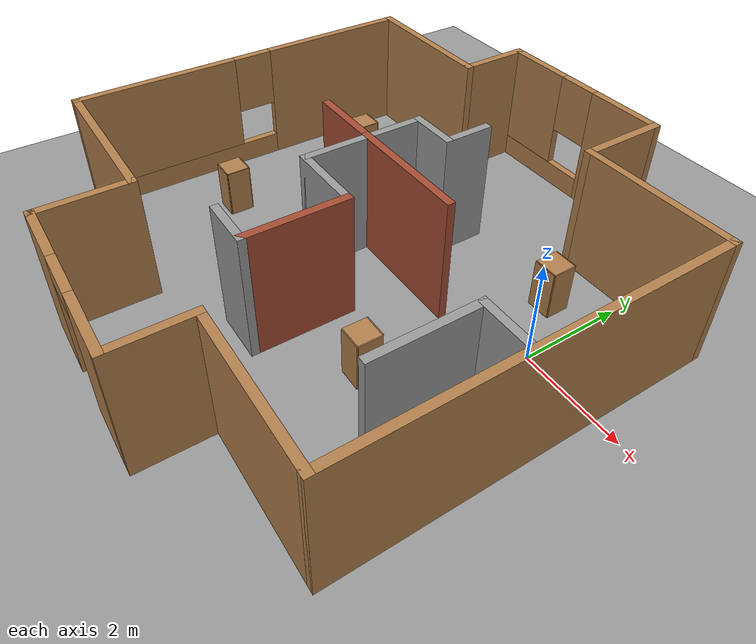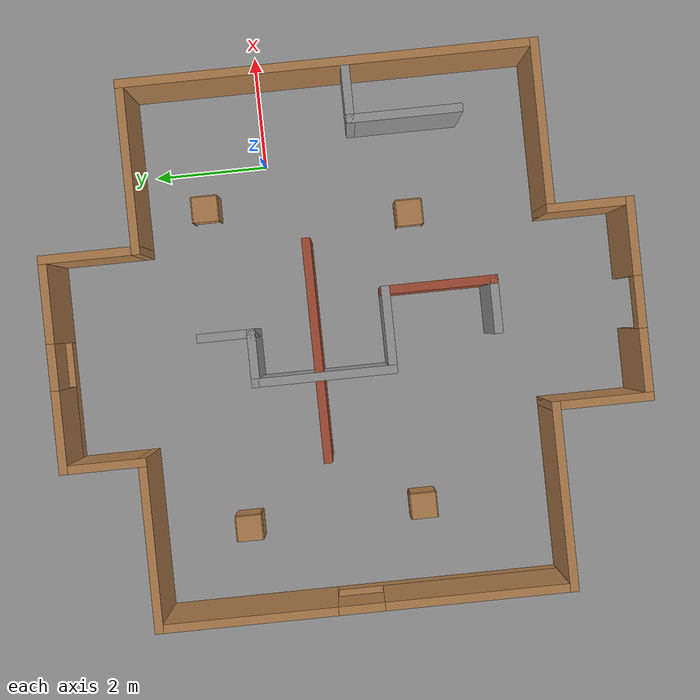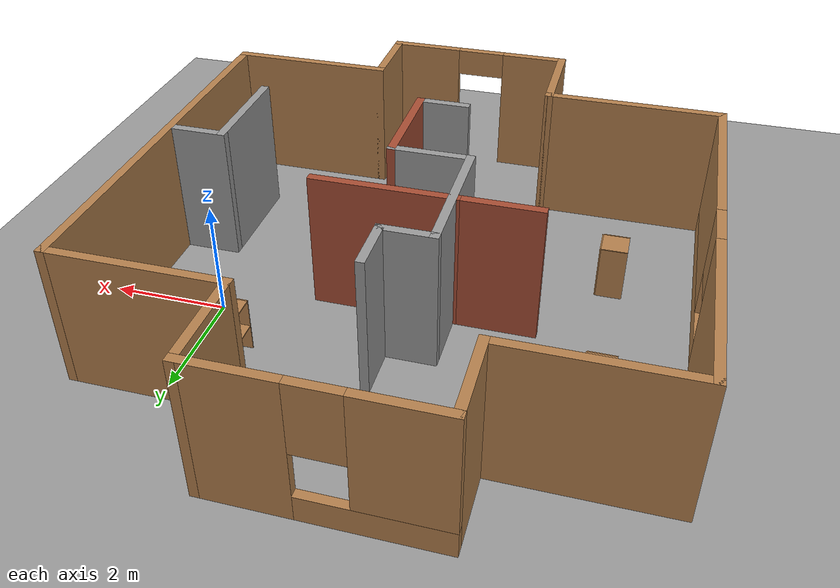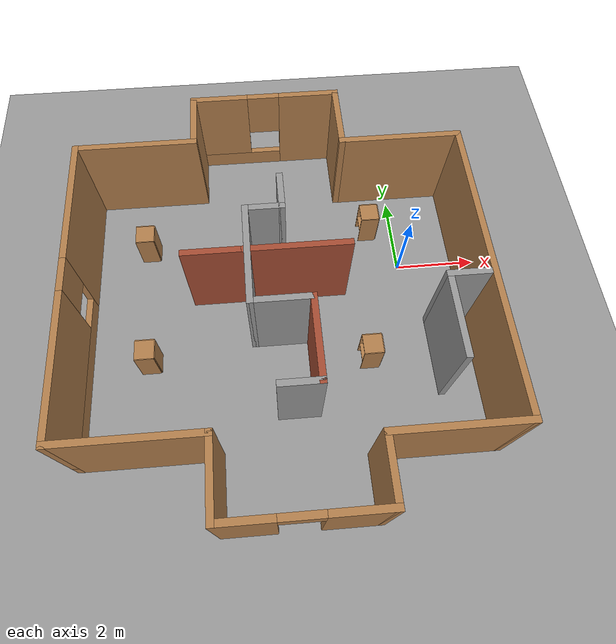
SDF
<sdf version="1.7">
 <world name="default">
  <light name="sun" type="directional">
   <pose>0 0 10 0 -0 0</pose>
   <diffuse>0.8 0.8 0.8 1</diffuse>
   <specular>0.2 0.2 0.2 1</specular>
   <attenuation>
    <range>1000</range>
    <constant>0.9</constant>
    <linear>0.01</linear>
    <sdf version="1.6">
     <world name="simple_maze">
      <model name="ground_plane">
       <static>true</static>
       <link name="link">
        <collision name="collision">
         <geometry><plane><normal>0 0 1</normal><size>100 100</size></plane></geometry>
        </collision>
        <visual name="visual">
         <geometry><plane><normal>0 0 1</normal><size>100 100</size></plane></geometry>
         <material><ambient>0.5 0.5 0.5 1</ambient><diffuse>0.5 0.5 0.5 1</diffuse></material>
        </visual>
       </link>
      </model>
      <light type="point" name="sun">
       <pose>0 0 10 0 0 0</pose>
       <diffuse>0.8 0.8 0.8 1</diffuse>
       <specular>0.2 0.2 0.2 1</specular>
       <attenuation><range>20</range><linear>0.1</linear></attenuation>
      </light>
      <gui fullscreen="0">
       <camera name="user_camera">
        <pose>0 0 15 0 1.57 0</pose>
        <view_controller>orbit</view_controller>
        <projection_type>perspective</projection_type>
       </camera>
      </gui>
      <physics type="ode">
       <real_time_update_rate>1000.0</real_time_update_rate>
       <max_step_size>0.001</max_step_size>
       <real_time_factor>1</real_time_factor>
       <ode>
        <solver>
         <type>quick</type>
         <iters>150</iters>
         <precon_iters>0</precon_iters>
         <sor>1.400000</sor>
         <use_dynamic_moi_rescaling>1</use_dynamic_moi_rescaling>
        </solver>
        <constraints>
         <cfm>0.00001</cfm>
         <erp>0.2</erp>
         <contact_max_correcting_vel>2000.000000</contact_max_correcting_vel>
         <contact_surface_layer>0.01000</contact_surface_layer>
        </constraints>
       </ode>
      </physics>
      <model name="outer_walls">
       <static>1</static>
       <link name="link">
        <collision name="left_wall1_collision">
         <pose>-5.0 2.0 0.5 0 0 0</pose>
         <geometry><box><size>0.2 6.0 1.0</size></box></geometry>
        </collision>
        <visual name="left_wall1_visual">
         <pose>-5.0 2.0 0.5 0 0 0</pose>
         <geometry><box><size>0.2 6.0 1.0</size></box></geometry>
         <material>
          <script><uri>file://media/materials/scripts/gazebo.material</uri><name>Gazebo/Wood</name></script>
         </material>
        </visual>
        <collision name="left_wall2_collision">
         <pose>-5.0 -3.0 0.5 0 0 0</pose>
         <geometry><box><size>0.2 4.0 1.0</size></box></geometry>
        </collision>
        <visual name="left_wall2_visual">
         <pose>-5.0 -3.0 0.5 0 0 0</pose>
         <geometry><box><size>0.2 4.0 1.0</size></box></geometry>
         <material>
          <script><uri>file://media/materials/scripts/gazebo.material</uri><name>Gazebo/Wood</name></script>
         </material>
        </visual>
        <collision name="right_wall_collision">
         <pose>5.0 0 0.5 0 0 0</pose>
         <geometry><box><size>0.2 10.0 1.0</size></box></geometry>
        </collision>
        <visual name="right_wall_visual">
         <pose>5.0 0 0.5 0 0 0</pose>
         <geometry><box><size>0.2 10.0 1.0</size></box></geometry>
         <material>
          <script><uri>file://media/materials/scripts/gazebo.material</uri><name>Gazebo/Wood</name></script>
         </material>
        </visual>
        <collision name="top_wall1_collision">
         <pose>-2.0 5.0 0.5 0 0 0</pose>
         <geometry><box><size>6.0 0.2 1.0</size></box></geometry>
        </collision>
        <visual name="top_wall1_visual">
         <pose>-2.0 5.0 0.5 0 0 0</pose>
         <geometry><box><size>6.0 0.2 1.0</size></box></geometry>
         <material>
          <script><uri>file://media/materials/scripts/gazebo.material</uri><name>Gazebo/Wood</name></script>
         </material>
        </visual>
        <collision name="top_wall2_collision">
         <pose>3.0 5.0 0.5 0 0 0</pose>
         <geometry><box><size>4.0 0.2 1.0</size></box></geometry>
        </collision>
        <visual name="top_wall2_visual">
         <pose>3.0 5.0 0.5 0 0 0</pose>
         <geometry><box><size>4.0 0.2 1.0</size></box></geometry>
         <material>
          <script><uri>file://media/materials/scripts/gazebo.material</uri><name>Gazebo/Wood</name></script>
         </material>
        </visual>
        <collision name="bottom_wall1_collision">
         <pose>-2.0 -5.0 0.5 0 0 0</pose>
         <geometry><box><size>6.0 0.2 1.0</size></box></geometry>
        </collision>
        <visual name="bottom_wall1_visual">
         <pose>-2.0 -5.0 0.5 0 0 0</pose>
         <geometry><box><size>6.0 0.2 1.0</size></box></geometry>
         <material>
          <script><uri>file://media/materials/scripts/gazebo.material</uri><name>Gazebo/Wood</name></script>
         </material>
        </visual>
        <collision name="bottom_wall2_collision">
         <pose>3.0 -5.0 0.5 0 0 0</pose>
         <geometry><box><size>4.0 0.2 1.0</size></box></geometry>
        </collision>
        <visual name="bottom_wall2_visual">
         <pose>3.0 -5.0 0.5 0 0 0</pose>
         <geometry><box><size>4.0 0.2 1.0</size></box></geometry>
         <material>
          <script><uri>file://media/materials/scripts/gazebo.material</uri><name>Gazebo/Wood</name></script>
         </material>
        </visual>
       </link>
      </model>
      <model name="brick_walls">
       <static>1</static>
       <link name="link">
        <collision name="brick_wall1_collision">
         <pose>0 2.0 0.5 0 0 0</pose>
         <geometry><box><size>4.0 0.2 1.0</size></box></geometry>
        </collision>
        <visual name="brick_wall1_visual">
         <pose>0 2.0 0.5 0 0 0</pose>
         <geometry><box><size>4.0 0.2 1.0</size></box></geometry>
         <material>
          <script><uri>file://media/materials/scripts/gazebo.material</uri><name>Gazebo/Bricks</name></script>
         </material>
        </visual>
        <collision name="brick_wall2_collision">
         <pose>0 -2.0 0.5 0 0 0</pose>
         <geometry><box><size>4.0 0.2 1.0</size></box></geometry>
        </collision>
        <visual name="brick_wall2_visual">
         <pose>0 -2.0 0.5 0 0 0</pose>
         <geometry><box><size>4.0 0.2 1.0</size></box></geometry>
         <material>
          <script><uri>file://media/materials/scripts/gazebo.material</uri><name>Gazebo/Bricks</name></script>
         </material>
        </visual>
       </link>
      </model>
      <model name="black_walls">
       <static>1</static>
       <link name="link">
        <collision name="black_wall1_collision">
         <pose>2.0 0 0.5 0 0 1.5708</pose>
         <geometry><box><size>4.0 0.2 1.0</size></box></geometry>
        </collision>
        <visual name="black_wall1_visual">
         <pose>2.0 0 0.5 0 0 1.5708</pose>
         <geometry><box><size>4.0 0.2 1.0</size></box></geometry>
         <material><ambient>0 0 0 1</ambient><diffuse>0 0 0 1</diffuse></material>
        </visual>
        <collision name="black_wall2_collision">
         <pose>4.0 2.0 0.5 0 0 1.5708</pose>
         <geometry><box><size>2.0 0.2 1.0</size></box></geometry>
        </collision>
        <visual name="black_wall2_visual">
         <pose>4.0 2.0 0.5 0 0 1.5708</pose>
         <geometry><box><size>2.0 0.2 1.0</size></box></geometry>
         <material><ambient>0 0 0 1</ambient><diffuse>0 0 0 1</diffuse></material>
        </visual>
        <collision name="black_wall3_collision">
         <pose>0 -4.0 0.5 0 0 0</pose>
         <geometry><box><size>4.0 0.2 1.0</size></box></geometry>
        </collision>
        <visual name="black_wall3_visual">
         <pose>0 -4.0 0.5 0 0 0</pose>
         <geometry><box><size>4.0 0.2 1.0</size></box></geometry>
         <material><ambient>0 0 0 1</ambient><diffuse>0 0 0 1</diffuse></material>
        </visual>
       </link>
      </model>
      <model name="wooden_box1">
       <pose>-3.0 3.0 0.25 0 0 0</pose>
       <link name="link">
        <collision name="collision"><geometry><box><size>0.5 0.5 0.5</size></box></geometry></collision>
        <visual name="visual">
         <geometry><box><size>0.5 0.5 0.5</size></box></geometry>
         <material>
          <script><uri>file://media/materials/scripts/gazebo.material</uri><name>Gazebo/Wood</name></script>
         </material>
        </visual>
       </link>
      </model>
      <model name="wooden_box2">
       <pose>-3.0 -1.0 0.25 0 0 0</pose>
       <link name="link">
        <collision name="collision"><geometry><box><size>0.5 0.5 0.5</size></box></geometry></collision>
        <visual name="visual">
         <geometry><box><size>0.5 0.5 0.5</size></box></geometry>
         <material>
          <script><uri>file://media/materials/scripts/gazebo.material</uri><name>Gazebo/Wood</name></script>
         </material>
        </visual>
       </link>
      </model>
      <model name="wooden_box3">
       <pose>-2.0 -3.5 0.25 0 0 0</pose>
       <link name="link">
        <collision name="collision"><geometry><box><size>0.5 0.5 0.5</size></box></geometry></collision>
        <visual name="visual">
         <geometry><box><size>0.5 0.5 0.5</size></box></geometry>
         <material>
          <script><uri>file://media/materials/scripts/gazebo.material</uri><name>Gazebo/Wood</name></script>
         </material>
        </visual>
       </link>
      </model>
      <model name="wooden_box4">
       <pose>3.0 -2.0 0.25 0 0 0</pose>
       <link name="link">
        <collision name="collision"><geometry><box><size>0.5 0.5 0.5</size></box></geometry></collision>
        <visual name="visual">
         <geometry><box><size>0.5 0.5 0.5</size></box></geometry>
         <material>
          <script><uri>file://media/materials/scripts/gazebo.material</uri><name>Gazebo/Wood</name></script>
         </material>
        </visual>
       </link>
      </model>
      <model name="wooden_box5">
       <pose>3.0 3.0 0.25 0 0 0</pose>
       <link name="link">
        <collision name="collision"><geometry><box><size>0.5 0.5 0.5</size></box></geometry></collision>
        <visual name="visual">
         <geometry><box><size>0.5 0.5 0.5</size></box></geometry>
         <material>
          <script><uri>file://media/materials/scripts/gazebo.material</uri><name>Gazebo/Wood</name></script>
         </material>
        </visual>
       </link>
      </model>
      <model name="water_region">
       <pose>4.5 3.5 0.01 0 0 0</pose>
       <static>true</static>
       <link name="link">
        <collision name="collision"><geometry><box><size>1.0 3.0 0.02</size></box></geometry></collision>
        <visual name="visual">
         <geometry><box><size>1.0 3.0 0.02</size></box></geometry>
         <material><ambient>0 0 1 1</ambient><diffuse>0 0 1 1</diffuse></material>
        </visual>
       </link>
      </model>
     </world>
    </sdf>
    <quadratic>0.001</quadratic>
   </attenuation>
   <direction>-0.5 0.1 -0.9</direction>
   <spot><inner_angle>0</inner_angle><outer_angle>0</outer_angle><falloff>0</falloff></spot>
  </light>
  <model name="ground_plane">
   <static>1</static>
   <link name="link">
    <collision name="collision">
     <geometry><plane><normal>0 0 1</normal><size>100 100</size></plane></geometry>
     <surface>
      <contact><collide_bitmask>65535</collide_bitmask></contact>
      <friction><ode><mu>100</mu><mu2>50</mu2></ode></friction>
     </surface>
    </collision>
    <visual name="visual">
     <cast_shadows>0</cast_shadows>
     <geometry><plane><normal>0 0 1</normal><size>100 100</size></plane></geometry>
     <material>
      <script><uri>file://media/materials/scripts/gazebo.material</uri><name>Gazebo/Grey</name></script>
     </material>
    </visual>
   </link>
  </model>
  <gravity>0 0 -9.8</gravity>
  <magnetic_field>6e-06 2.3e-05 -4.2e-05</magnetic_field>
  <atmosphere type="adiabatic"/>
  <physics type="ode">
   <max_step_size>0.001</max_step_size>
   <real_time_factor>1</real_time_factor>
   <real_time_update_rate>1000</real_time_update_rate>
  </physics>
  <scene><ambient>0.4 0.4 0.4 1</ambient><background>0.7 0.7 0.7 1</background><shadows>1</shadows></scene>
  <spherical_coordinates>
   <surface_model>EARTH_WGS84</surface_model>
   <latitude_deg>0</latitude_deg>
   <longitude_deg>0</longitude_deg>
   <elevation>0</elevation>
   <heading_deg>0</heading_deg>
  </spherical_coordinates>
  <model name="test2.word">
   <pose>-3.19164 -1.16233 0 0 -0 0</pose>
   <link name="Wall_16">
    <collision name="Wall_16_Collision">
     <geometry><box><size>3.25 0.15 2.5</size></box></geometry>
     <pose>0 0 1.25 0 -0 0</pose>
    </collision>
    <visual name="Wall_16_Visual">
     <pose>0 0 1.25 0 -0 0</pose>
     <geometry><box><size>3.25 0.15 2.5</size></box></geometry>
     <material>
      <script><uri>file://media/materials/scripts/gazebo.material</uri><name>Gazebo/Wood</name></script>
      <ambient>1 1 1 1</ambient>
     </material>
     <meta><layer>0</layer></meta>
    </visual>
    <pose>-3.1 -3.425 0 0 -0 0</pose>
   </link>
   <link name="Wall_17">
    <collision name="Wall_17_Collision">
     <geometry><box><size>1.75 0.15 2.5</size></box></geometry>
     <pose>0 0 1.25 0 -0 0</pose>
    </collision>
    <visual name="Wall_17_Visual">
     <pose>0 0 1.25 0 -0 0</pose>
     <geometry><box><size>1.75 0.15 2.5</size></box></geometry>
     <material>
      <script><uri>file://media/materials/scripts/gazebo.material</uri><name>Gazebo/Wood</name></script>
      <ambient>1 1 1 1</ambient>
     </material>
     <meta><layer>0</layer></meta>
    </visual>
    <pose>-1.55 -4.225 0 0 -0 -1.5708</pose>
   </link>
   <link name="Wall_18">
    <pose>0.125 -5.025 0 0 -0 0</pose>
    <visual name="Wall_18_Visual_0">
     <pose>-1.12889 0 1.25 0 -0 0</pose>
     <geometry><box><size>1.24222 0.15 2.5</size></box></geometry>
     <material>
      <script><uri>file://media/materials/scripts/gazebo.material</uri><name>Gazebo/Wood</name></script>
      <ambient>1 1 1 1</ambient>
     </material>
     <meta><layer>0</layer></meta>
    </visual>
    <collision name="Wall_18_Collision_0">
     <geometry><box><size>1.24222 0.15 2.5</size></box></geometry>
     <pose>-1.12889 0 1.25 0 -0 0</pose>
    </collision>
    <visual name="Wall_18_Visual_1">
     <pose>1.07111 0 1.25 0 -0 0</pose>
     <geometry><box><size>1.35777 0.15 2.5</size></box></geometry>
     <material>
      <script><uri>file://media/materials/scripts/gazebo.material</uri><name>Gazebo/Wood</name></script>
      <ambient>1 1 1 1</ambient>
     </material>
     <meta><layer>0</layer></meta>
    </visual>
    <collision name="Wall_18_Collision_1">
     <geometry><box><size>1.35777 0.15 2.5</size></box></geometry>
     <pose>1.07111 0 1.25 0 -0 0</pose>
    </collision>
    <visual name="Wall_18_Visual_2">
     <pose>-0.057775 0 2.25 0 -0 0</pose>
     <geometry><box><size>0.9 0.15 0.5</size></box></geometry>
     <material>
      <script><uri>file://media/materials/scripts/gazebo.material</uri><name>Gazebo/Wood</name></script>
      <ambient>1 1 1 1</ambient>
     </material>
     <meta><layer>0</layer></meta>
    </visual>
    <collision name="Wall_18_Collision_2">
     <geometry><box><size>0.9 0.15 0.5</size></box></geometry>
     <pose>-0.057775 0 2.25 0 -0 0</pose>
    </collision>
   </link>
   <link name="Wall_19">
    <collision name="Wall_19_Collision">
     <geometry><box><size>1.5 0.15 2.5</size></box></geometry>
     <pose>0 0 1.25 0 -0 0</pose>
    </collision>
    <visual name="Wall_19_Visual">
     <pose>0 0 1.25 0 -0 0</pose>
     <geometry><box><size>1.5 0.15 2.5</size></box></geometry>
     <material>
      <script><uri>file://media/materials/scripts/gazebo.material</uri><name>Gazebo/Wood</name></script>
      <ambient>1 1 1 1</ambient>
     </material>
     <meta><layer>0</layer></meta>
    </visual>
    <pose>1.8 -4.35 0 0 -0 1.5708</pose>
   </link>
   <link name="Wall_20">
    <collision name="Wall_20_Collision">
     <geometry><box><size>3 0.15 2.5</size></box></geometry>
     <pose>0 0 1.25 0 -0 0</pose>
    </collision>
    <visual name="Wall_20_Visual">
     <pose>0 0 1.25 0 -0 0</pose>
     <geometry><box><size>3 0.15 2.5</size></box></geometry>
     <material>
      <script><uri>file://media/materials/scripts/gazebo.material</uri><name>Gazebo/Wood</name></script>
      <ambient>1 1 1 1</ambient>
     </material>
     <meta><layer>0</layer></meta>
    </visual>
    <pose>3.225 -3.675 0 0 -0 0</pose>
   </link>
   <link name="Wall_21">
    <collision name="Wall_21_Collision">
     <geometry><box><size>7.25 0.15 2.5</size></box></geometry>
     <pose>0 0 1.25 0 -0 0</pose>
    </collision>
    <visual name="Wall_21_Visual">
     <pose>0 0 1.25 0 -0 0</pose>
     <geometry><box><size>7.25 0.15 2.5</size></box></geometry>
     <material>
      <script><uri>file://media/materials/scripts/gazebo.material</uri><name>Gazebo/Wood</name></script>
      <ambient>1 1 1 1</ambient>
     </material>
     <meta><layer>0</layer></meta>
    </visual>
    <pose>4.65 -0.125 0 0 -0 1.5708</pose>
   </link>
   <link name="Wall_22">
    <collision name="Wall_22_Collision">
     <geometry><box><size>3 0.15 2.5</size></box></geometry>
     <pose>0 0 1.25 0 -0 0</pose>
    </collision>
    <visual name="Wall_22_Visual">
     <pose>0 0 1.25 0 -0 0</pose>
     <geometry><box><size>3 0.15 2.5</size></box></geometry>
     <material>
      <script><uri>file://media/materials/scripts/gazebo.material</uri><name>Gazebo/Wood</name></script>
      <ambient>1 1 1 1</ambient>
     </material>
     <meta><layer>0</layer></meta>
    </visual>
    <pose>3.225 3.425 0 0 -0 3.14159</pose>
   </link>
   <link name="Wall_23">
    <collision name="Wall_23_Collision">
     <geometry><box><size>1.75 0.15 2.5</size></box></geometry>
     <pose>0 0 1.25 0 -0 0</pose>
    </collision>
    <visual name="Wall_23_Visual">
     <pose>0 0 1.25 0 -0 0</pose>
     <geometry><box><size>1.75 0.15 2.5</size></box></geometry>
     <material>
      <script><uri>file://media/materials/scripts/gazebo.material</uri><name>Gazebo/Wood</name></script>
      <ambient>1 1 1 1</ambient>
     </material>
     <meta><layer>0</layer></meta>
    </visual>
    <pose>1.8 4.225 0 0 -0 1.5708</pose>
   </link>
   <link name="Wall_24">
    <pose>-0 5.025 0 0 -0 3.14159</pose>
    <visual name="Wall_24_Visual_0">
     <pose>-1.11791 0 1.25 0 -0 0</pose>
     <geometry><box><size>1.51418 0.15 2.5</size></box></geometry>
     <material>
      <script><uri>file://media/materials/scripts/gazebo.material</uri><name>Gazebo/Wood</name></script>
      <ambient>1 1 1 1</ambient>
     </material>
     <meta><layer>0</layer></meta>
    </visual>
    <collision name="Wall_24_Collision_0">
     <geometry><box><size>1.51418 0.15 2.5</size></box></geometry>
     <pose>-1.11791 0 1.25 0 -0 0</pose>
    </collision>
    <visual name="Wall_24_Visual_1">
     <pose>0.757088 0 0.25 0 -0 0</pose>
     <geometry><box><size>2.23583 0.15 0.5</size></box></geometry>
     <material>
      <script><uri>file://media/materials/scripts/gazebo.material</uri><name>Gazebo/Wood</name></script>
      <ambient>1 1 1 1</ambient>
     </material>
     <meta><layer>0</layer></meta>
    </visual>
    <collision name="Wall_24_Collision_1">
     <geometry><box><size>2.23583 0.15 0.5</size></box></geometry>
     <pose>0.757088 0 0.25 0 -0 0</pose>
    </collision>
    <visual name="Wall_24_Visual_2">
     <pose>1.15709 0 1.5 0 -0 0</pose>
     <geometry><box><size>1.43582 0.15 2</size></box></geometry>
     <material>
      <script><uri>file://media/materials/scripts/gazebo.material</uri><name>Gazebo/Wood</name></script>
      <ambient>1 1 1 1</ambient>
     </material>
     <meta><layer>0</layer></meta>
    </visual>
    <collision name="Wall_24_Collision_2">
     <geometry><box><size>1.43582 0.15 2</size></box></geometry>
     <pose>1.15709 0 1.5 0 -0 0</pose>
    </collision>
    <visual name="Wall_24_Visual_3">
     <pose>0.039175 0 1.9 0 -0 0</pose>
     <geometry><box><size>0.8 0.15 1.2</size></box></geometry>
     <material>
      <script><uri>file://media/materials/scripts/gazebo.material</uri><name>Gazebo/Wood</name></script>
      <ambient>1 1 1 1</ambient>
     </material>
     <meta><layer>0</layer></meta>
    </visual>
    <collision name="Wall_24_Collision_3">
     <geometry><box><size>0.8 0.15 1.2</size></box></geometry>
     <pose>0.039175 0 1.9 0 -0 0</pose>
    </collision>
   </link>
   <link name="Wall_25">
    <collision name="Wall_25_Collision">
     <geometry><box><size>1.5 0.15 2.5</size></box></geometry>
     <pose>0 0 1.25 0 -0 0</pose>
    </collision>
    <visual name="Wall_25_Visual">
     <pose>0 0 1.25 0 -0 0</pose>
     <geometry><box><size>1.5 0.15 2.5</size></box></geometry>
     <material>
      <script><uri>file://media/materials/scripts/gazebo.material</uri><name>Gazebo/Wood</name></script>
      <ambient>1 1 1 1</ambient>
     </material>
     <meta><layer>0</layer></meta>
    </visual>
    <pose>-1.8 4.35 0 0 -0 -1.5708</pose>
   </link>
   <link name="Wall_30">
    <collision name="Wall_30_Collision">
     <geometry><box><size>3 0.15 2.5</size></box></geometry>
     <pose>0 0 1.25 0 -0 0</pose>
    </collision>
    <visual name="Wall_30_Visual">
     <pose>0 0 1.25 0 -0 0</pose>
     <geometry><box><size>3 0.15 2.5</size></box></geometry>
     <material>
      <script><uri>file://media/materials/scripts/gazebo.material</uri><name>Gazebo/Wood</name></script>
      <ambient>1 1 1 1</ambient>
     </material>
     <meta><layer>0</layer></meta>
    </visual>
    <pose>-3.225 3.675 0 0 -0 3.14159</pose>
   </link>
   <link name="Wall_31">
    <pose>-4.65 0.125 0 0 -0 -1.5708</pose>
    <visual name="Wall_31_Visual_0">
     <pose>-2.05278 0 1.25 0 -0 0</pose>
     <geometry><box><size>3.14443 0.15 2.5</size></box></geometry>
     <material>
      <script><uri>file://media/materials/scripts/gazebo.material</uri><name>Gazebo/Wood</name></script>
      <ambient>0.996078 0.47451 0.0196078 1</ambient>
     </material>
     <meta><layer>0</layer></meta>
    </visual>
    <collision name="Wall_31_Collision_0">
     <geometry><box><size>3.14443 0.15 2.5</size></box></geometry>
     <pose>-2.05278 0 1.25 0 -0 0</pose>
    </collision>
    <visual name="Wall_31_Visual_1">
     <pose>1.57222 0 0.25 0 -0 0</pose>
     <geometry><box><size>4.10557 0.15 0.5</size></box></geometry>
     <material>
      <script><uri>file://media/materials/scripts/gazebo.material</uri><name>Gazebo/Wood</name></script>
      <ambient>0.996078 0.47451 0.0196078 1</ambient>
     </material>
     <meta><layer>0</layer></meta>
    </visual>
    <collision name="Wall_31_Collision_1">
     <geometry><box><size>4.10557 0.15 0.5</size></box></geometry>
     <pose>1.57222 0 0.25 0 -0 0</pose>
    </collision>
    <visual name="Wall_31_Visual_2">
     <pose>1.97222 0 1.5 0 -0 0</pose>
     <geometry><box><size>3.30557 0.15 2</size></box></geometry>
     <material>
      <script><uri>file://media/materials/scripts/gazebo.material</uri><name>Gazebo/Wood</name></script>
      <ambient>0.996078 0.47451 0.0196078 1</ambient>
     </material>
     <meta><layer>0</layer></meta>
    </visual>
    <collision name="Wall_31_Collision_2">
     <geometry><box><size>3.30557 0.15 2</size></box></geometry>
     <pose>1.97222 0 1.5 0 -0 0</pose>
    </collision>
    <visual name="Wall_31_Visual_3">
     <pose>-0.080568 0 1.9 0 -0 0</pose>
     <geometry><box><size>0.8 0.15 1.2</size></box></geometry>
     <material>
      <script><uri>file://media/materials/scripts/gazebo.material</uri><name>Gazebo/Wood</name></script>
      <ambient>0.996078 0.47451 0.0196078 1</ambient>
     </material>
     <meta><layer>0</layer></meta>
    </visual>
    <collision name="Wall_31_Collision_3">
     <geometry><box><size>0.8 0.15 1.2</size></box></geometry>
     <pose>-0.080568 0 1.9 0 -0 0</pose>
    </collision>
   </link>
   <link name="Wall_33">
    <collision name="Wall_33_Collision">
     <geometry><box><size>2.5 0.15 2.5</size></box></geometry>
     <pose>0 0 1.25 0 -0 0</pose>
    </collision>
    <visual name="Wall_33_Visual">
     <pose>0 0 1.25 0 -0 0</pose>
     <geometry><box><size>2.5 0.15 2.5</size></box></geometry>
     <material>
      <script><uri>file://media/materials/scripts/gazebo.material</uri><name>Gazebo/Grey</name></script>
      <ambient>0.180392 0.203922 0.211765 1</ambient>
     </material>
     <meta><layer>0</layer></meta>
    </visual>
    <pose>-0.65098 0.440378 0 0 -0 -1.5708</pose>
   </link>
   <link name="Wall_34">
    <collision name="Wall_34_Collision">
     <geometry><box><size>1.5 0.15 2.5</size></box></geometry>
     <pose>0 0 1.25 0 -0 0</pose>
    </collision>
    <visual name="Wall_34_Visual">
     <pose>0 0 1.25 0 -0 0</pose>
     <geometry><box><size>1.5 0.15 2.5</size></box></geometry>
     <material>
      <script><uri>file://media/materials/scripts/gazebo.material</uri><name>Gazebo/Grey</name></script>
      <ambient>0.180392 0.203922 0.211765 1</ambient>
     </material>
     <meta><layer>0</layer></meta>
    </visual>
    <pose>0.02402 -0.734622 0 0 -0 0</pose>
   </link>
   <link name="Wall_35">
    <collision name="Wall_35_Collision">
     <geometry><box><size>2 0.15 2.5</size></box></geometry>
     <pose>0 0 1.25 0 -0 0</pose>
    </collision>
    <visual name="Wall_35_Visual">
     <pose>0 0 1.25 0 -0 0</pose>
     <geometry><box><size>2 0.15 2.5</size></box></geometry>
     <material>
      <script><uri>file://media/materials/scripts/gazebo.material</uri><name>Gazebo/Bricks</name></script>
      <ambient>0.180392 0.203922 0.211765 1</ambient>
     </material>
     <meta><layer>0</layer></meta>
    </visual>
    <pose>0.69902 -1.65962 0 0 -0 -1.5708</pose>
   </link>
   <link name="Wall_36">
    <collision name="Wall_36_Collision">
     <geometry><box><size>1 0.15 2.5</size></box></geometry>
     <pose>0 0 1.25 0 -0 0</pose>
    </collision>
    <visual name="Wall_36_Visual">
     <pose>0 0 1.25 0 -0 0</pose>
     <geometry><box><size>1 0.15 2.5</size></box></geometry>
     <material>
      <script><uri>file://media/materials/scripts/gazebo.material</uri><name>Gazebo/Grey</name></script>
      <ambient>0.180392 0.203922 0.211765 1</ambient>
     </material>
     <meta><layer>0</layer></meta>
    </visual>
    <pose>0.27402 -2.58462 0 0 -0 3.14159</pose>
   </link>
   <link name="Wall_39">
    <collision name="Wall_39_Collision">
     <geometry><box><size>1 0.15 2.5</size></box></geometry>
     <pose>0 0 1.25 0 -0 0</pose>
    </collision>
    <visual name="Wall_39_Visual">
     <pose>0 0 1.25 0 -0 0</pose>
     <geometry><box><size>1 0.15 2.5</size></box></geometry>
     <material>
      <script><uri>file://media/materials/scripts/gazebo.material</uri><name>Gazebo/Grey</name></script>
      <ambient>0.180392 0.203922 0.211765 1</ambient>
     </material>
     <meta><layer>0</layer></meta>
    </visual>
    <pose>-0.22598 1.61538 0 0 -0 0</pose>
   </link>
   <link name="Wall_40">
    <collision name="Wall_40_Collision">
     <geometry><box><size>1 0.15 2.5</size></box></geometry>
     <pose>0 0 1.25 0 -0 0</pose>
    </collision>
    <visual name="Wall_40_Visual">
     <pose>0 0 1.25 0 -0 0</pose>
     <geometry><box><size>1 0.15 2.5</size></box></geometry>
     <material>
      <script><uri>file://media/materials/scripts/gazebo.material</uri><name>Gazebo/Grey</name></script>
      <ambient>0.180392 0.203922 0.211765 1</ambient>
     </material>
     <meta><layer>0</layer></meta>
    </visual>
    <pose>0.19902 2.04038 0 0 -0 1.5708</pose>
   </link>
   <link name="Wall_43">
    <collision name="Wall_43_Collision">
     <geometry><box><size>1.5 0.15 2.5</size></box></geometry>
     <pose>0 0 1.25 0 -0 0</pose>
    </collision>
    <visual name="Wall_43_Visual">
     <pose>0 0 1.25 0 -0 0</pose>
     <geometry><box><size>1.5 0.15 2.5</size></box></geometry>
     <material>
      <script><uri>file://media/materials/scripts/gazebo.material</uri><name>Gazebo/Bricks</name></script>
      <ambient>0.180392 0.203922 0.211765 1</ambient>
     </material>
     <meta><layer>0</layer></meta>
    </visual>
    <pose>-1.37918 0.52477 0 0 -0 3.14159</pose>
   </link>
   <link name="Wall_45">
    <collision name="Wall_45_Collision">
     <geometry><box><size>2.5 0.15 2.5</size></box></geometry>
     <pose>0 0 1.25 0 -0 0</pose>
    </collision>
    <visual name="Wall_45_Visual">
     <pose>0 0 1.25 0 -0 0</pose>
     <geometry><box><size>2.5 0.15 2.5</size></box></geometry>
     <material>
      <script><uri>file://media/materials/scripts/gazebo.material</uri><name>Gazebo/Bricks</name></script>
      <ambient>0.180392 0.203922 0.211765 1</ambient>
     </material>
     <meta><layer>0</layer></meta>
    </visual>
    <pose>0.47082 0.52477 0 0 -0 0</pose>
   </link>
   <link name="Wall_47">
    <collision name="Wall_47_Collision">
     <geometry><box><size>1 0.15 2.5</size></box></geometry>
     <pose>0 0 1.25 0 -0 0</pose>
    </collision>
    <visual name="Wall_47_Visual">
     <pose>0 0 1.25 0 -0 0</pose>
     <geometry><box><size>1 0.15 2.5</size></box></geometry>
     <material>
      <script><uri>file://media/materials/scripts/gazebo.material</uri><name>Gazebo/Grey</name></script>
      <ambient>0.180392 0.203922 0.211765 1</ambient>
     </material>
     <meta><layer>0</layer></meta>
    </visual>
    <pose>4.08446 -0.432837 0 0 -0 3.14159</pose>
   </link>
   <link name="Wall_48">
    <collision name="Wall_48_Collision">
     <geometry><box><size>2 0.15 2.5</size></box></geometry>
     <pose>0 0 1.25 0 -0 0</pose>
    </collision>
    <visual name="Wall_48_Visual">
     <pose>0 0 1.25 0 -0 0</pose>
     <geometry><box><size>2 0.15 2.5</size></box></geometry>
     <material>
      <script><uri>file://media/materials/scripts/gazebo.material</uri><name>Gazebo/Grey</name></script>
      <ambient>0.180392 0.203922 0.211765 1</ambient>
     </material>
     <meta><layer>0</layer></meta>
    </visual>
    <pose>3.65946 -1.35784 0 0 -0 -1.5708</pose>
   </link>
   <static>1</static>
  </model>
  <model name="ground_plane_0">
   <static>1</static>
   <link name="link">
    <collision name="collision">
     <geometry><plane><normal>0 0 1</normal><size>100 100</size></plane></geometry>
     <surface>
      <contact><collide_bitmask>65535</collide_bitmask></contact>
      <friction><ode><mu>100</mu><mu2>50</mu2></ode></friction>
     </surface>
    </collision>
    <visual name="visual">
     <cast_shadows>0</cast_shadows>
     <geometry><plane><normal>0 0 1</normal><size>100 100</size></plane></geometry>
     <material>
      <script><uri>file://media/materials/scripts/gazebo.material</uri><name>Gazebo/Grey</name></script>
     </material>
    </visual>
   </link>
   <pose>-0.646631 0.050216 0 0 -0 0</pose>
  </model>
  <model name="cabinet">
   <static>1</static>
   <link name="cabinet_bottom_plate">
    <inertial>
     <pose>0 0 -1 0 -0 0</pose>
     <inertia><ixx>2.05</ixx><ixy>0</ixy><ixz>0</ixz><iyy>2.05</iyy><iyz>0</iyz><izz>2.05</izz></inertia>
     <mass>25</mass>
    </inertial>
    <collision name="cabinet_bottom_plate_geom">
     <pose>0 0 0.01 0 -0 0</pose>
     <geometry><box><size>0.45 0.45 0.02</size></box></geometry>
    </collision>
    <visual name="cabinet_bottom_plate_geom_visual">
     <pose>0 0 0.01 0 -0 0</pose>
     <geometry><box><size>0.45 0.45 0.02</size></box></geometry>
     <material>
      <script><uri>file://media/materials/scripts/gazebo.material</uri><name>Gazebo/Wood</name></script>
     </material>
    </visual>
    <collision name="cabinet_bottom_plate_geom_cabinet_back_plate">
     <pose>0.235 0 0.51 0 -0 0</pose>
     <geometry><box><size>0.02 0.45 1.02</size></box></geometry>
    </collision>
    <visual name="cabinet_bottom_plate_geom_cabinet_back_plate_visual">
     <pose>0.235 0 0.51 0 -0 0</pose>
     <geometry><box><size>0.02 0.45 1.02</size></box></geometry>
     <material>
      <script><uri>file://media/materials/scripts/gazebo.material</uri><name>Gazebo/Wood</name></script>
     </material>
    </visual>
    <collision name="cabinet_bottom_plate_geom_cabinet_left_plate">
     <pose>0 0.235 0.51 0 -0 0</pose>
     <geometry><box><size>0.45 0.02 1.02</size></box></geometry>
    </collision>
    <visual name="cabinet_bottom_plate_geom_cabinet_left_plate_visual">
     <pose>0 0.235 0.51 0 -0 0</pose>
     <geometry><box><size>0.45 0.02 1.02</size></box></geometry>
     <material>
      <script><uri>file://media/materials/scripts/gazebo.material</uri><name>Gazebo/Wood</name></script>
     </material>
    </visual>
    <collision name="cabinet_bottom_plate_geom_cabinet_middle_plate">
     <pose>0 0 0.51 0 -0 0</pose>
     <geometry><box><size>0.45 0.45 0.02</size></box></geometry>
    </collision>
    <visual name="cabinet_bottom_plate_geom_cabinet_middle_plate_visual">
     <pose>0 0 0.51 0 -0 0</pose>
     <geometry><box><size>0.45 0.45 0.02</size></box></geometry>
     <material>
      <script><uri>file://media/materials/scripts/gazebo.material</uri><name>Gazebo/Wood</name></script>
     </material>
    </visual>
    <collision name="cabinet_bottom_plate_geom_cabinet_right_plate">
     <pose>0 -0.235 0.51 0 -0 0</pose>
     <geometry><box><size>0.45 0.02 1.02</size></box></geometry>
    </collision>
    <visual name="cabinet_bottom_plate_geom_cabinet_right_plate_visual">
     <pose>0 -0.235 0.51 0 -0 0</pose>
     <geometry><box><size>0.45 0.02 1.02</size></box></geometry>
     <material>
      <script><uri>file://media/materials/scripts/gazebo.material</uri><name>Gazebo/Wood</name></script>
     </material>
    </visual>
    <collision name="cabinet_bottom_plate_geom_cabinet_top_plate">
     <pose>0 0 1.01 0 -0 0</pose>
     <geometry><box><size>0.45 0.45 0.02</size></box></geometry>
    </collision>
    <visual name="cabinet_bottom_plate_geom_cabinet_top_plate_visual">
     <pose>0 0 1.01 0 -0 0</pose>
     <geometry><box><size>0.45 0.45 0.02</size></box></geometry>
     <material>
      <script><uri>file://media/materials/scripts/gazebo.material</uri><name>Gazebo/Wood</name></script>
     </material>
    </visual>
   </link>
   <pose>-6.35343 -2.2256 0 0 -0 0</pose>
  </model>
  <model name="cabinet_0">
   <static>1</static>
   <link name="cabinet_bottom_plate">
    <inertial>
     <pose>0 0 -1 0 -0 0</pose>
     <inertia><ixx>2.05</ixx><ixy>0</ixy><ixz>0</ixz><iyy>2.05</iyy><iyz>0</iyz><izz>2.05</izz></inertia>
     <mass>25</mass>
    </inertial>
    <collision name="cabinet_bottom_plate_geom">
     <pose>0 0 0.01 0 -0 0</pose>
     <geometry><box><size>0.45 0.45 0.02</size></box></geometry>
    </collision>
    <visual name="cabinet_bottom_plate_geom_visual">
     <pose>0 0 0.01 0 -0 0</pose>
     <geometry><box><size>0.45 0.45 0.02</size></box></geometry>
     <material>
      <script><uri>file://media/materials/scripts/gazebo.material</uri><name>Gazebo/Wood</name></script>
     </material>
    </visual>
    <collision name="cabinet_bottom_plate_geom_cabinet_back_plate">
     <pose>0.235 0 0.51 0 -0 0</pose>
     <geometry><box><size>0.02 0.45 1.02</size></box></geometry>
    </collision>
    <visual name="cabinet_bottom_plate_geom_cabinet_back_plate_visual">
     <pose>0.235 0 0.51 0 -0 0</pose>
     <geometry><box><size>0.02 0.45 1.02</size></box></geometry>
     <material>
      <script><uri>file://media/materials/scripts/gazebo.material</uri><name>Gazebo/Wood</name></script>
     </material>
    </visual>
    <collision name="cabinet_bottom_plate_geom_cabinet_left_plate">
     <pose>0 0.235 0.51 0 -0 0</pose>
     <geometry><box><size>0.45 0.02 1.02</size></box></geometry>
    </collision>
    <visual name="cabinet_bottom_plate_geom_cabinet_left_plate_visual">
     <pose>0 0.235 0.51 0 -0 0</pose>
     <geometry><box><size>0.45 0.02 1.02</size></box></geometry>
     <material>
      <script><uri>file://media/materials/scripts/gazebo.material</uri><name>Gazebo/Wood</name></script>
     </material>
    </visual>
    <collision name="cabinet_bottom_plate_geom_cabinet_middle_plate">
     <pose>0 0 0.51 0 -0 0</pose>
     <geometry><box><size>0.45 0.45 0.02</size></box></geometry>
    </collision>
    <visual name="cabinet_bottom_plate_geom_cabinet_middle_plate_visual">
     <pose>0 0 0.51 0 -0 0</pose>
     <geometry><box><size>0.45 0.45 0.02</size></box></geometry>
     <material>
      <script><uri>file://media/materials/scripts/gazebo.material</uri><name>Gazebo/Wood</name></script>
     </material>
    </visual>
    <collision name="cabinet_bottom_plate_geom_cabinet_right_plate">
     <pose>0 -0.235 0.51 0 -0 0</pose>
     <geometry><box><size>0.45 0.02 1.02</size></box></geometry>
    </collision>
    <visual name="cabinet_bottom_plate_geom_cabinet_right_plate_visual">
     <pose>0 -0.235 0.51 0 -0 0</pose>
     <geometry><box><size>0.45 0.02 1.02</size></box></geometry>
     <material>
      <script><uri>file://media/materials/scripts/gazebo.material</uri><name>Gazebo/Wood</name></script>
     </material>
    </visual>
    <collision name="cabinet_bottom_plate_geom_cabinet_top_plate">
     <pose>0 0 1.01 0 -0 0</pose>
     <geometry><box><size>0.45 0.45 0.02</size></box></geometry>
    </collision>
    <visual name="cabinet_bottom_plate_geom_cabinet_top_plate_visual">
     <pose>0 0 1.01 0 -0 0</pose>
     <geometry><box><size>0.45 0.45 0.02</size></box></geometry>
     <material>
      <script><uri>file://media/materials/scripts/gazebo.material</uri><name>Gazebo/Wood</name></script>
     </material>
    </visual>
   </link>
   <pose>-6.43995 0.903855 0 0 -0 0</pose>
  </model>
  <model name="cabinet_1">
   <static>1</static>
   <link name="cabinet_bottom_plate">
    <inertial>
     <pose>0 0 -1 0 -0 0</pose>
     <inertia><ixx>2.05</ixx><ixy>0</ixy><ixz>0</ixz><iyy>2.05</iyy><iyz>0</iyz><izz>2.05</izz></inertia>
     <mass>25</mass>
    </inertial>
    <collision name="cabinet_bottom_plate_geom">
     <pose>0 0 0.01 0 -0 0</pose>
     <geometry><box><size>0.45 0.45 0.02</size></box></geometry>
    </collision>
    <visual name="cabinet_bottom_plate_geom_visual">
     <pose>0 0 0.01 0 -0 0</pose>
     <geometry><box><size>0.45 0.45 0.02</size></box></geometry>
     <material>
      <script><uri>file://media/materials/scripts/gazebo.material</uri><name>Gazebo/Wood</name></script>
     </material>
    </visual>
    <collision name="cabinet_bottom_plate_geom_cabinet_back_plate">
     <pose>0.235 0 0.51 0 -0 0</pose>
     <geometry><box><size>0.02 0.45 1.02</size></box></geometry>
    </collision>
    <visual name="cabinet_bottom_plate_geom_cabinet_back_plate_visual">
     <pose>0.235 0 0.51 0 -0 0</pose>
     <geometry><box><size>0.02 0.45 1.02</size></box></geometry>
     <material>
      <script><uri>file://media/materials/scripts/gazebo.material</uri><name>Gazebo/Wood</name></script>
     </material>
    </visual>
    <collision name="cabinet_bottom_plate_geom_cabinet_left_plate">
     <pose>0 0.235 0.51 0 -0 0</pose>
     <geometry><box><size>0.45 0.02 1.02</size></box></geometry>
    </collision>
    <visual name="cabinet_bottom_plate_geom_cabinet_left_plate_visual">
     <pose>0 0.235 0.51 0 -0 0</pose>
     <geometry><box><size>0.45 0.02 1.02</size></box></geometry>
     <material>
      <script><uri>file://media/materials/scripts/gazebo.material</uri><name>Gazebo/Wood</name></script>
     </material>
    </visual>
    <collision name="cabinet_bottom_plate_geom_cabinet_middle_plate">
     <pose>0 0 0.51 0 -0 0</pose>
     <geometry><box><size>0.45 0.45 0.02</size></box></geometry>
    </collision>
    <visual name="cabinet_bottom_plate_geom_cabinet_middle_plate_visual">
     <pose>0 0 0.51 0 -0 0</pose>
     <geometry><box><size>0.45 0.45 0.02</size></box></geometry>
     <material>
      <script><uri>file://media/materials/scripts/gazebo.material</uri><name>Gazebo/Wood</name></script>
     </material>
    </visual>
    <collision name="cabinet_bottom_plate_geom_cabinet_right_plate">
     <pose>0 -0.235 0.51 0 -0 0</pose>
     <geometry><box><size>0.45 0.02 1.02</size></box></geometry>
    </collision>
    <visual name="cabinet_bottom_plate_geom_cabinet_right_plate_visual">
     <pose>0 -0.235 0.51 0 -0 0</pose>
     <geometry><box><size>0.45 0.02 1.02</size></box></geometry>
     <material>
      <script><uri>file://media/materials/scripts/gazebo.material</uri><name>Gazebo/Wood</name></script>
     </material>
    </visual>
    <collision name="cabinet_bottom_plate_geom_cabinet_top_plate">
     <pose>0 0 1.01 0 -0 0</pose>
     <geometry><box><size>0.45 0.45 0.02</size></box></geometry>
    </collision>
    <visual name="cabinet_bottom_plate_geom_cabinet_top_plate_visual">
     <pose>0 0 1.01 0 -0 0</pose>
     <geometry><box><size>0.45 0.45 0.02</size></box></geometry>
     <material>
      <script><uri>file://media/materials/scripts/gazebo.material</uri><name>Gazebo/Wood</name></script>
     </material>
    </visual>
   </link>
   <pose>-1.13468 -2.4902 0 0 -0 0</pose>
  </model>
  <model name="cabinet_2">
   <static>1</static>
   <link name="cabinet_bottom_plate">
    <inertial>
     <pose>0 0 -1 0 -0 0</pose>
     <inertia><ixx>2.05</ixx><ixy>0</ixy><ixz>0</ixz><iyy>2.05</iyy><iyz>0</iyz><izz>2.05</izz></inertia>
     <mass>25</mass>
    </inertial>
    <collision name="cabinet_bottom_plate_geom">
     <pose>0 0 0.01 0 -0 0</pose>
     <geometry><box><size>0.45 0.45 0.02</size></box></geometry>
    </collision>
    <visual name="cabinet_bottom_plate_geom_visual">
     <pose>0 0 0.01 0 -0 0</pose>
     <geometry><box><size>0.45 0.45 0.02</size></box></geometry>
     <material>
      <script><uri>file://media/materials/scripts/gazebo.material</uri><name>Gazebo/Wood</name></script>
     </material>
    </visual>
    <collision name="cabinet_bottom_plate_geom_cabinet_back_plate">
     <pose>0.235 0 0.51 0 -0 0</pose>
     <geometry><box><size>0.02 0.45 1.02</size></box></geometry>
    </collision>
    <visual name="cabinet_bottom_plate_geom_cabinet_back_plate_visual">
     <pose>0.235 0 0.51 0 -0 0</pose>
     <geometry><box><size>0.02 0.45 1.02</size></box></geometry>
     <material>
      <script><uri>file://media/materials/scripts/gazebo.material</uri><name>Gazebo/Wood</name></script>
     </material>
    </visual>
    <collision name="cabinet_bottom_plate_geom_cabinet_left_plate">
     <pose>0 0.235 0.51 0 -0 0</pose>
     <geometry><box><size>0.45 0.02 1.02</size></box></geometry>
    </collision>
    <visual name="cabinet_bottom_plate_geom_cabinet_left_plate_visual">
     <pose>0 0.235 0.51 0 -0 0</pose>
     <geometry><box><size>0.45 0.02 1.02</size></box></geometry>
     <material>
      <script><uri>file://media/materials/scripts/gazebo.material</uri><name>Gazebo/Wood</name></script>
     </material>
    </visual>
    <collision name="cabinet_bottom_plate_geom_cabinet_middle_plate">
     <pose>0 0 0.51 0 -0 0</pose>
     <geometry><box><size>0.45 0.45 0.02</size></box></geometry>
    </collision>
    <visual name="cabinet_bottom_plate_geom_cabinet_middle_plate_visual">
     <pose>0 0 0.51 0 -0 0</pose>
     <geometry><box><size>0.45 0.45 0.02</size></box></geometry>
     <material>
      <script><uri>file://media/materials/scripts/gazebo.material</uri><name>Gazebo/Wood</name></script>
     </material>
    </visual>
    <collision name="cabinet_bottom_plate_geom_cabinet_right_plate">
     <pose>0 -0.235 0.51 0 -0 0</pose>
     <geometry><box><size>0.45 0.02 1.02</size></box></geometry>
    </collision>
    <visual name="cabinet_bottom_plate_geom_cabinet_right_plate_visual">
     <pose>0 -0.235 0.51 0 -0 0</pose>
     <geometry><box><size>0.45 0.02 1.02</size></box></geometry>
     <material>
      <script><uri>file://media/materials/scripts/gazebo.material</uri><name>Gazebo/Wood</name></script>
     </material>
    </visual>
    <collision name="cabinet_bottom_plate_geom_cabinet_top_plate">
     <pose>0 0 1.01 0 -0 0</pose>
     <geometry><box><size>0.45 0.45 0.02</size></box></geometry>
    </collision>
    <visual name="cabinet_bottom_plate_geom_cabinet_top_plate_visual">
     <pose>0 0 1.01 0 -0 0</pose>
     <geometry><box><size>0.45 0.45 0.02</size></box></geometry>
     <material>
      <script><uri>file://media/materials/scripts/gazebo.material</uri><name>Gazebo/Wood</name></script>
     </material>
    </visual>
   </link>
   <pose>-0.712164 1.12095 0 0 -0 0</pose>
  </model>
 </world>
</sdf>
